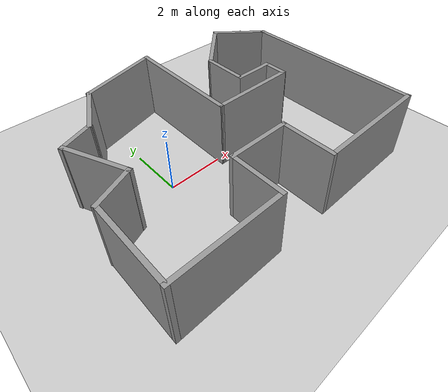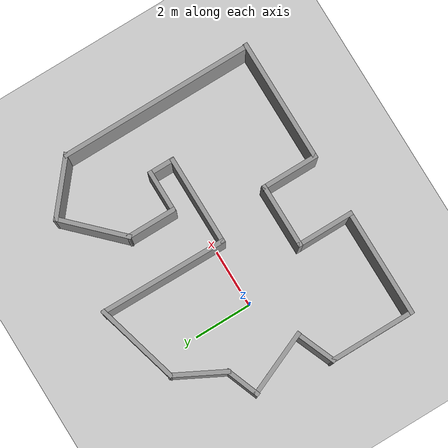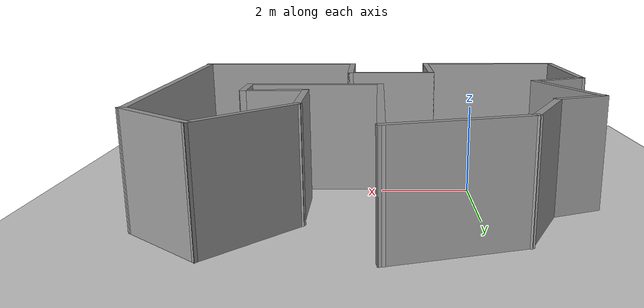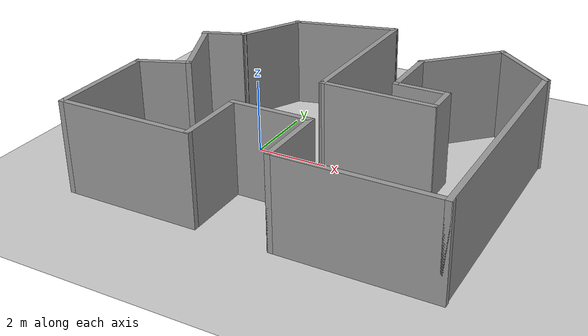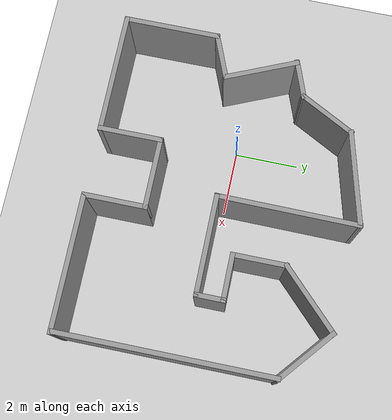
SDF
<sdf version="1.4">
 <world name="default">
  <physics type="ode">
   <max_step_size>0.001</max_step_size>
   <real_time_update_rate>1000</real_time_update_rate>
   <simbody>
    <contact><static_friction>0.98</static_friction><dynamic_friction>0.98</dynamic_friction></contact>
   </simbody>
   <ode>
    <constraints>
     <contact_max_correcting_vel>0.3</contact_max_correcting_vel>
     <contact_surface_layer>0.0005</contact_surface_layer>
    </constraints>
   </ode>
  </physics>
  <include><uri>model://ground_plane</uri></include>
  <include><uri>model://sun</uri></include>
  <include><uri>model://DRC_HOUSE1</uri><pose>2 0 0 0 0 0</pose></include>
 </world>
</sdf>

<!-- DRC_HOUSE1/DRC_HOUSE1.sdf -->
<sdf version='1.5'>
  <model name='DRC_HOUSE1'>
    <pose frame=''>2.51613 -0.034532 0 0 -0 0</pose>
    <link name='Wall_0'>
      <collision name='Wall_0_Collision'>
        <geometry>
          <box>
            <size>2 0.15 2.5</size>
          </box>
        </geometry>
        <pose frame=''>0 0 1.25 0 -0 0</pose>
      </collision>
      <visual name='Wall_0_Visual'>
        <pose frame=''>0 0 1.25 0 -0 0</pose>
        <geometry>
          <box>
            <size>2 0.15 2.5</size>
          </box>
        </geometry>
        <material>
          <script>
            <uri>file://media/materials/scripts/gazebo.material</uri>
            <name>Gazebo/Grey</name>
          </script>
          <ambient>1 1 1 1</ambient>
        </material>
      </visual>
      <pose frame=''>-1.30613 -3.15047 0 0 0 -1.5708</pose>
    </link>
    <link name='Wall_1'>
      <collision name='Wall_1_Collision'>
        <geometry>
          <box>
            <size>3.75 0.15 2.5</size>
          </box>
        </geometry>
        <pose frame=''>0 0 1.25 0 -0 0</pose>
      </collision>
      <visual name='Wall_1_Visual'>
        <pose frame=''>0 0 1.25 0 -0 0</pose>
        <geometry>
          <box>
            <size>3.75 0.15 2.5</size>
          </box>
        </geometry>
        <material>
          <script>
            <uri>file://media/materials/scripts/gazebo.material</uri>
            <name>Gazebo/Grey</name>
          </script>
          <ambient>1 1 1 1</ambient>
        </material>
      </visual>
      <pose frame=''>-3.10613 -4.07547 0 0 -0 3.14159</pose>
    </link>
    <link name='Wall_10'>
      <collision name='Wall_10_Collision'>
        <geometry>
          <box>
            <size>6.75 0.15 2.5</size>
          </box>
        </geometry>
        <pose frame=''>0 0 1.25 0 -0 0</pose>
      </collision>
      <visual name='Wall_10_Visual'>
        <pose frame=''>0 0 1.25 0 -0 0</pose>
        <geometry>
          <box>
            <size>6.75 0.15 2.5</size>
          </box>
        </geometry>
        <material>
          <script>
            <uri>file://media/materials/scripts/gazebo.material</uri>
            <name>Gazebo/Grey</name>
          </script>
          <ambient>1 1 1 1</ambient>
        </material>
      </visual>
      <pose frame=''>4.87517 -0.775468 0 0 -0 1.5708</pose>
    </link>
    <link name='Wall_11'>
      <collision name='Wall_11_Collision'>
        <geometry>
          <box>
            <size>2.18787 0.15 2.5</size>
          </box>
        </geometry>
        <pose frame=''>0 0 1.25 0 -0 0</pose>
      </collision>
      <visual name='Wall_11_Visual'>
        <pose frame=''>0 0 1.25 0 -0 0</pose>
        <geometry>
          <box>
            <size>2.18787 0.15 2.5</size>
          </box>
        </geometry>
        <material>
          <script>
            <uri>file://media/materials/scripts/gazebo.material</uri>
            <name>Gazebo/Grey</name>
          </script>
          <ambient>1 1 1 1</ambient>
        </material>
      </visual>
      <pose frame=''>4.11701 3.17861 0 0 -0 2.4446</pose>
    </link>
    <link name='Wall_12'>
      <collision name='Wall_12_Collision'>
        <geometry>
          <box>
            <size>2.5 0.15 2.5</size>
          </box>
        </geometry>
        <pose frame=''>0 0 1.25 0 -0 0</pose>
      </collision>
      <visual name='Wall_12_Visual'>
        <pose frame=''>0 0 1.25 0 -0 0</pose>
        <geometry>
          <box>
            <size>2.5 0.15 2.5</size>
          </box>
        </geometry>
        <material>
          <script>
            <uri>file://media/materials/scripts/gazebo.material</uri>
            <name>Gazebo/Grey</name>
          </script>
          <ambient>1 1 1 1</ambient>
        </material>
      </visual>
      <pose frame=''>2.50487 3.00183 0 0 0 -2.35619</pose>
    </link>
    <link name='Wall_13'>
      <collision name='Wall_13_Collision'>
        <geometry>
          <box>
            <size>1.75 0.15 2.5</size>
          </box>
        </geometry>
        <pose frame=''>0 0 1.25 0 -0 0</pose>
      </collision>
      <visual name='Wall_13_Visual'>
        <pose frame=''>0 0 1.25 0 -0 0</pose>
        <geometry>
          <box>
            <size>1.75 0.15 2.5</size>
          </box>
        </geometry>
        <material>
          <script>
            <uri>file://media/materials/scripts/gazebo.material</uri>
            <name>Gazebo/Grey</name>
          </script>
          <ambient>1 1 1 1</ambient>
        </material>
      </visual>
      <pose frame=''>1.67402 1.37098 0 0 0 -1.5708</pose>
    </link>
    <link name='Wall_14'>
      <collision name='Wall_14_Collision'>
        <geometry>
          <box>
            <size>1.5 0.15 2.5</size>
          </box>
        </geometry>
        <pose frame=''>0 0 1.25 0 -0 0</pose>
      </collision>
      <visual name='Wall_14_Visual'>
        <pose frame=''>0 0 1.25 0 -0 0</pose>
        <geometry>
          <box>
            <size>1.5 0.15 2.5</size>
          </box>
        </geometry>
        <material>
          <script>
            <uri>file://media/materials/scripts/gazebo.material</uri>
            <name>Gazebo/Grey</name>
          </script>
          <ambient>1 1 1 1</ambient>
        </material>
      </visual>
      <pose frame=''>2.34902 0.570978 0 0 -0 0</pose>
    </link>
    <link name='Wall_15'>
      <collision name='Wall_15_Collision'>
        <geometry>
          <box>
            <size>0.949302 0.15 2.5</size>
          </box>
        </geometry>
        <pose frame=''>0 0 1.25 0 -0 0</pose>
      </collision>
      <visual name='Wall_15_Visual'>
        <pose frame=''>0 0 1.25 0 -0 0</pose>
        <geometry>
          <box>
            <size>0.949302 0.15 2.5</size>
          </box>
        </geometry>
        <material>
          <script>
            <uri>file://media/materials/scripts/gazebo.material</uri>
            <name>Gazebo/Grey</name>
          </script>
          <ambient>1 1 1 1</ambient>
        </material>
      </visual>
      <pose frame=''>3.02402 0.171327 0 0 0 -1.5708</pose>
    </link>
    <link name='Wall_16'>
      <collision name='Wall_16_Collision'>
        <geometry>
          <box>
            <size>3.08809 0.15 2.5</size>
          </box>
        </geometry>
        <pose frame=''>0 0 1.25 0 -0 0</pose>
      </collision>
      <visual name='Wall_16_Visual'>
        <pose frame=''>0 0 1.25 0 -0 0</pose>
        <geometry>
          <box>
            <size>3.08809 0.15 2.5</size>
          </box>
        </geometry>
        <material>
          <script>
            <uri>file://media/materials/scripts/gazebo.material</uri>
            <name>Gazebo/Grey</name>
          </script>
          <ambient>1 1 1 1</ambient>
        </material>
      </visual>
      <pose frame=''>1.53185 -0.228324 0 0 -0 3.14159</pose>
    </link>
    <link name='Wall_17'>
      <collision name='Wall_17_Collision'>
        <geometry>
          <box>
            <size>4.4371 0.15 2.5</size>
          </box>
        </geometry>
        <pose frame=''>0 0 1.25 0 -0 0</pose>
      </collision>
      <visual name='Wall_17_Visual'>
        <pose frame=''>0 0 1.25 0 -0 0</pose>
        <geometry>
          <box>
            <size>4.4371 0.15 2.5</size>
          </box>
        </geometry>
        <material>
          <script>
            <uri>file://media/materials/scripts/gazebo.material</uri>
            <name>Gazebo/Grey</name>
          </script>
          <ambient>1 1 1 1</ambient>
        </material>
      </visual>
      <pose frame=''>0.058292 1.91515 0 0 -0 1.56211</pose>
    </link>
    <link name='Wall_18'>
      <collision name='Wall_18_Collision'>
        <geometry>
          <box>
            <size>3 0.15 2.5</size>
          </box>
        </geometry>
        <pose frame=''>0 0 1.25 0 -0 0</pose>
      </collision>
      <visual name='Wall_18_Visual'>
        <pose frame=''>0 0 1.25 0 -0 0</pose>
        <geometry>
          <box>
            <size>3 0.15 2.5</size>
          </box>
        </geometry>
        <material>
          <script>
            <uri>file://media/materials/scripts/gazebo.material</uri>
            <name>Gazebo/Grey</name>
          </script>
          <ambient>1 1 1 1</ambient>
        </material>
      </visual>
      <pose frame=''>-1.29954 3.6898 0 0 0 -2.87979</pose>
    </link>
    <link name='Wall_19'>
      <collision name='Wall_19_Collision'>
        <geometry>
          <box>
            <size>1.94806 0.15 2.5</size>
          </box>
        </geometry>
        <pose frame=''>0 0 1.25 0 -0 0</pose>
      </collision>
      <visual name='Wall_19_Visual'>
        <pose frame=''>0 0 1.25 0 -0 0</pose>
        <geometry>
          <box>
            <size>1.94806 0.15 2.5</size>
          </box>
        </geometry>
        <material>
          <script>
            <uri>file://media/materials/scripts/gazebo.material</uri>
            <name>Gazebo/Grey</name>
          </script>
          <ambient>1 1 1 1</ambient>
        </material>
      </visual>
      <pose frame=''>-3.09322 2.52463 0 0 0 -2.05342</pose>
    </link>
    <link name='Wall_2'>
      <collision name='Wall_2_Collision'>
        <geometry>
          <box>
            <size>3 0.15 2.5</size>
          </box>
        </geometry>
        <pose frame=''>0 0 1.25 0 -0 0</pose>
      </collision>
      <visual name='Wall_2_Visual'>
        <pose frame=''>0 0 1.25 0 -0 0</pose>
        <geometry>
          <box>
            <size>3 0.15 2.5</size>
          </box>
        </geometry>
        <material>
          <script>
            <uri>file://media/materials/scripts/gazebo.material</uri>
            <name>Gazebo/Grey</name>
          </script>
          <ambient>1 1 1 1</ambient>
        </material>
      </visual>
      <pose frame=''>-4.90613 -2.65047 0 0 -0 1.5708</pose>
    </link>
    <link name='Wall_20'>
      <collision name='Wall_20_Collision'>
        <geometry>
          <box>
            <size>1.27167 0.15 2.5</size>
          </box>
        </geometry>
        <pose frame=''>0 0 1.25 0 -0 0</pose>
      </collision>
      <visual name='Wall_20_Visual'>
        <pose frame=''>0 0 1.25 0 -0 0</pose>
        <geometry>
          <box>
            <size>1.27167 0.15 2.5</size>
          </box>
        </geometry>
        <material>
          <script>
            <uri>file://media/materials/scripts/gazebo.material</uri>
            <name>Gazebo/Grey</name>
          </script>
          <ambient>1 1 1 1</ambient>
        </material>
      </visual>
      <pose frame=''>-4.03525 1.53045 0 0 0 -2.78109</pose>
    </link>
    <link name='Wall_3'>
      <collision name='Wall_3_Collision'>
        <geometry>
          <box>
            <size>1.47934 0.15 2.5</size>
          </box>
        </geometry>
        <pose frame=''>0 0 1.25 0 -0 0</pose>
      </collision>
      <visual name='Wall_3_Visual'>
        <pose frame=''>0 0 1.25 0 -0 0</pose>
        <geometry>
          <box>
            <size>1.47934 0.15 2.5</size>
          </box>
        </geometry>
        <material>
          <script>
            <uri>file://media/materials/scripts/gazebo.material</uri>
            <name>Gazebo/Grey</name>
          </script>
          <ambient>1 1 1 1</ambient>
        </material>
      </visual>
      <pose frame=''>-4.29103 -0.973599 0 0 -0 0.388651</pose>
    </link>
    <link name='Wall_4'>
      <collision name='Wall_4_Collision'>
        <geometry>
          <box>
            <size>2.38651 0.15 2.5</size>
          </box>
        </geometry>
        <pose frame=''>0 0 1.25 0 -0 0</pose>
      </collision>
      <visual name='Wall_4_Visual'>
        <pose frame=''>0 0 1.25 0 -0 0</pose>
        <geometry>
          <box>
            <size>2.38651 0.15 2.5</size>
          </box>
        </geometry>
        <material>
          <script>
            <uri>file://media/materials/scripts/gazebo.material</uri>
            <name>Gazebo/Grey</name>
          </script>
          <ambient>1 1 1 1</ambient>
        </material>
      </visual>
      <pose frame=''>-4.09485 0.305446 0 0 -0 1.97719</pose>
    </link>
    <link name='Wall_6'>
      <collision name='Wall_6_Collision'>
        <geometry>
          <box>
            <size>2.25 0.15 2.5</size>
          </box>
        </geometry>
        <pose frame=''>0 0 1.25 0 -0 0</pose>
      </collision>
      <visual name='Wall_6_Visual'>
        <pose frame=''>0 0 1.25 0 -0 0</pose>
        <geometry>
          <box>
            <size>2.25 0.15 2.5</size>
          </box>
        </geometry>
        <material>
          <script>
            <uri>file://media/materials/scripts/gazebo.material</uri>
            <name>Gazebo/Grey</name>
          </script>
          <ambient>1 1 1 1</ambient>
        </material>
      </visual>
      <pose frame=''>-0.256131 -2.22547 0 0 -0 0</pose>
    </link>
    <link name='Wall_7'>
      <collision name='Wall_7_Collision'>
        <geometry>
          <box>
            <size>2 0.15 2.5</size>
          </box>
        </geometry>
        <pose frame=''>0 0 1.25 0 -0 0</pose>
      </collision>
      <visual name='Wall_7_Visual'>
        <pose frame=''>0 0 1.25 0 -0 0</pose>
        <geometry>
          <box>
            <size>2 0.15 2.5</size>
          </box>
        </geometry>
        <material>
          <script>
            <uri>file://media/materials/scripts/gazebo.material</uri>
            <name>Gazebo/Grey</name>
          </script>
          <ambient>1 1 1 1</ambient>
        </material>
      </visual>
      <pose frame=''>0.793869 -3.15047 0 0 0 -1.5708</pose>
    </link>
    <link name='Wall_9'>
      <collision name='Wall_9_Collision'>
        <geometry>
          <box>
            <size>4.25444 0.15 2.5</size>
          </box>
        </geometry>
        <pose frame=''>0 0 1.25 0 -0 0</pose>
      </collision>
      <visual name='Wall_9_Visual'>
        <pose frame=''>0 0 1.25 0 -0 0</pose>
        <geometry>
          <box>
            <size>4.25444 0.15 2.5</size>
          </box>
        </geometry>
        <material>
          <script>
            <uri>file://media/materials/scripts/gazebo.material</uri>
            <name>Gazebo/Grey</name>
          </script>
          <ambient>1 1 1 1</ambient>
        </material>
      </visual>
      <pose frame=''>2.84609 -4.07547 0 0 -0 0</pose>
    </link>
    <static>1</static>
  </model>
</sdf>
